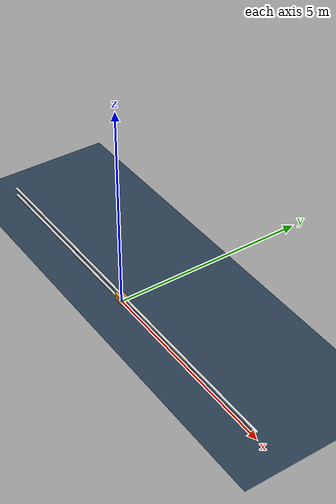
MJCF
<mujoco model="cartpole_2d">
  <compiler angle="radian" autolimits="true"/>
  <option gravity="0 0 -9.81" integrator="RK4" timestep="0.01"/>

  <visual>
    <headlight ambient="0.45 0.45 0.45" diffuse="0.7 0.7 0.7"/>
    <rgba haze="0.15 0.25 0.35 1"/>
  </visual>

  <asset>
    <texture name="grid" type="2d" builtin="checker" width="512" height="512"
             rgb1="0.20 0.30 0.40" rgb2="0.10 0.15 0.20"/>
    <material name="grid" texture="grid" texrepeat="8 8" reflectance="0.1"/>
    <material name="cart" rgba="0.90 0.55 0.20 1"/>
    <material name="pole" rgba="0.20 0.65 0.95 1"/>
    <material name="rail" rgba="0.80 0.80 0.80 1"/>
  </asset>

  <worldbody>
    <light pos="0 0 4" dir="0 0 -1" diffuse="1 1 1"/>
    <geom name="floor" type="plane" size="6 3 0.1" material="grid" contype="0" conaffinity="0"/>

    <geom name="rail_top" type="box" pos="0 0 0.20" size="5.0 0.03 0.02" material="rail" contype="0" conaffinity="0"/>
    <geom name="rail_bottom" type="box" pos="0 0 0.00" size="5.0 0.03 0.02" material="rail" contype="0" conaffinity="0"/>

    <body name="cart" pos="0 0 0.11">
      <joint name="slider" type="slide" axis="1 0 0" limited="true" range="-4.8 4.8" damping="0.08"/>
      <geom name="cart_geom" type="box" size="0.14 0.09 0.09" material="cart" contype="0" conaffinity="0"/>
      <inertial pos="0 0 0" mass="1.0" diaginertia="0.02 0.02 0.02"/>

      <body name="pole" pos="0 0 0.09">
        <joint name="pole_hinge" type="hinge" axis="0 1 0" limited="false" damping="0.01"/>
        <geom name="pole_geom" type="capsule" fromto="0 0 0 0 0 0.65" size="0.03" material="pole" contype="0" conaffinity="0"/>
        <inertial pos="0 0 0.325" mass="0.12" diaginertia="0.004 0.004 0.0002"/>
      </body>
    </body>

    <camera name="main_cam" pos="0 -4.3 1.8" xyaxes="1 0 0 0 0.55 0.84"/>
  </worldbody>

  <actuator>
    <motor name="cart_motor" joint="slider" gear="25" ctrllimited="true" ctrlrange="-1 1"/>
  </actuator>
</mujoco>
